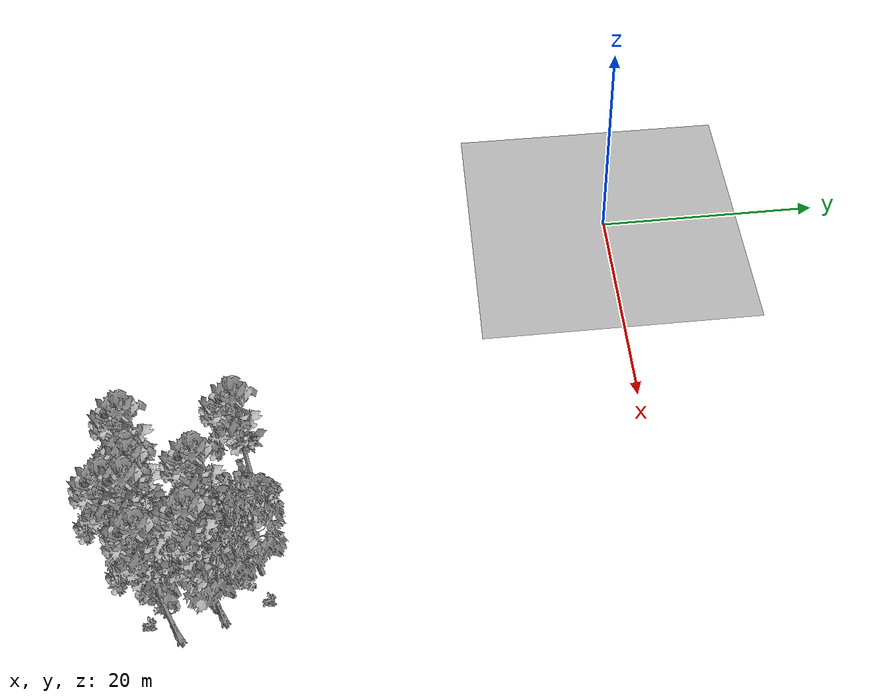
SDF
<sdf version="1.7">
 <world name="default">
  <model name="ground_plane">
   <static>1</static>
   <link name="link">
    <collision name="collision">
     <pose>-50 0 0 0 -0 0</pose>
     <geometry><plane><normal>0 0 1</normal><size>80 80</size></plane></geometry>
     <surface><contact><ode><min_depth>0.01</min_depth><max_vel>0</max_vel></ode></contact></surface>
    </collision>
    <visual name="grass">
     <cast_shadows>0</cast_shadows>
     <geometry>
      <mesh>
       <scale>0.46714285714285714 0.46714285714285714 0.1</scale>
       <uri>file://grass_plane/meshes/grass_plane.dae</uri>
      </mesh>
     </geometry>
    </visual>
   </link>
  </model>
  <model name="Tree 8">
   <static>1</static>
   <pose>34.49295552566552 -38.38899228813294 0 1.57079 -0 0</pose>
   <link name="link">
    <collision name="collision">
     <geometry><mesh><scale>3.5 5 3.5</scale><uri>model://tree_9/meshes/tree_9.obj</uri></mesh></geometry>
    </collision>
    <visual name="visual">
     <geometry><mesh><scale>3.5 5 3.5</scale><uri>model://tree_9/meshes/tree_9.obj</uri></mesh></geometry>
    </visual>
   </link>
  </model>
  <model name="Tree 20">
   <static>1</static>
   <pose>33.00172199247376 -33.87744943451156 0 1.57079 -0 0</pose>
   <link name="link">
    <collision name="collision">
     <geometry><mesh><scale>3.5 5 3.5</scale><uri>model://tree_9/meshes/tree_9.obj</uri></mesh></geometry>
    </collision>
    <visual name="visual">
     <geometry><mesh><scale>3.5 5 3.5</scale><uri>model://tree_9/meshes/tree_9.obj</uri></mesh></geometry>
    </visual>
   </link>
  </model>
  <model name="Tree 48">
   <static>1</static>
   <pose>32.96853286918038 -38.11937939612697 0 1.57079 -0 0</pose>
   <link name="link">
    <collision name="collision">
     <geometry><mesh><scale>3.5 5 3.5</scale><uri>model://tree_9/meshes/tree_9.obj</uri></mesh></geometry>
    </collision>
    <visual name="visual">
     <geometry><mesh><scale>3.5 5 3.5</scale><uri>model://tree_9/meshes/tree_9.obj</uri></mesh></geometry>
    </visual>
   </link>
  </model>
  <model name="Tree 96">
   <static>1</static>
   <pose>28.973933767972696 -39.09815846501508 0 1.57079 -0 0</pose>
   <link name="link">
    <collision name="collision">
     <geometry><mesh><scale>3.5 5 3.5</scale><uri>model://tree_9/meshes/tree_9.obj</uri></mesh></geometry>
    </collision>
    <visual name="visual">
     <geometry><mesh><scale>3.5 5 3.5</scale><uri>model://tree_9/meshes/tree_9.obj</uri></mesh></geometry>
    </visual>
   </link>
  </model>
  <model name="Tree 139">
   <static>1</static>
   <pose>36.47490648990211 -34.739538654504784 0 1.57079 -0 0</pose>
   <link name="link">
    <collision name="collision">
     <geometry><mesh><scale>3.5 5 3.5</scale><uri>model://tree_2/meshes/tree_2.obj</uri></mesh></geometry>
    </collision>
    <visual name="visual">
     <geometry><mesh><scale>3.5 5 3.5</scale><uri>model://tree_2/meshes/tree_2.obj</uri></mesh></geometry>
    </visual>
   </link>
  </model>
  <model name="Tree 225">
   <static>1</static>
   <pose>33.61349323770182 -31.404459941034972 0 1.57079 -0 0</pose>
   <link name="link">
    <collision name="collision">
     <geometry><mesh><scale>3.5 5 3.5</scale><uri>model://tree_2/meshes/tree_2.obj</uri></mesh></geometry>
    </collision>
    <visual name="visual">
     <geometry><mesh><scale>3.5 5 3.5</scale><uri>model://tree_2/meshes/tree_2.obj</uri></mesh></geometry>
    </visual>
   </link>
  </model>
  <model name="Tree 314">
   <static>1</static>
   <pose>34.77116886239604 -37.68761335708597 0 1.57079 -0 0</pose>
   <link name="link">
    <collision name="collision">
     <geometry><mesh><scale>3.5 5 3.5</scale><uri>model://tree_2/meshes/tree_2.obj</uri></mesh></geometry>
    </collision>
    <visual name="visual">
     <geometry><mesh><scale>3.5 5 3.5</scale><uri>model://tree_2/meshes/tree_2.obj</uri></mesh></geometry>
    </visual>
   </link>
  </model>
  <model name="Tree 320">
   <static>1</static>
   <pose>28.58090664128372 -31.381829050268806 0 1.57079 -0 0</pose>
   <link name="link">
    <collision name="collision">
     <geometry><mesh><scale>3.5 5 3.5</scale><uri>model://tree_9/meshes/tree_9.obj</uri></mesh></geometry>
    </collision>
    <visual name="visual">
     <geometry><mesh><scale>3.5 5 3.5</scale><uri>model://tree_9/meshes/tree_9.obj</uri></mesh></geometry>
    </visual>
   </link>
  </model>
  <model name="Tree 437">
   <static>1</static>
   <pose>35.298857888451494 -33.524072252771695 0 1.57079 -0 0</pose>
   <link name="link">
    <collision name="collision">
     <geometry><mesh><scale>3.5 5 3.5</scale><uri>model://tree_2/meshes/tree_2.obj</uri></mesh></geometry>
    </collision>
    <visual name="visual">
     <geometry><mesh><scale>3.5 5 3.5</scale><uri>model://tree_2/meshes/tree_2.obj</uri></mesh></geometry>
    </visual>
   </link>
  </model>
  <model name="Tree 458">
   <static>1</static>
   <pose>37.32949129968921 -34.123247341942516 0 1.57079 -0 0</pose>
   <link name="link">
    <collision name="collision">
     <geometry><mesh><scale>3.5 5 3.5</scale><uri>model://tree_9/meshes/tree_9.obj</uri></mesh></geometry>
    </collision>
    <visual name="visual">
     <geometry><mesh><scale>3.5 5 3.5</scale><uri>model://tree_9/meshes/tree_9.obj</uri></mesh></geometry>
    </visual>
   </link>
  </model>
  <model name="Tree 506">
   <static>1</static>
   <pose>34.42800935228185 -39.86549120639599 0 1.57079 -0 0</pose>
   <link name="link">
    <collision name="collision">
     <geometry><mesh><scale>3.5 5 3.5</scale><uri>model://tree_9/meshes/tree_9.obj</uri></mesh></geometry>
    </collision>
    <visual name="visual">
     <geometry><mesh><scale>3.5 5 3.5</scale><uri>model://tree_9/meshes/tree_9.obj</uri></mesh></geometry>
    </visual>
   </link>
  </model>
  <model name="Tree 521">
   <static>1</static>
   <pose>32.40594636904041 -38.41516595754571 0 1.57079 -0 0</pose>
   <link name="link">
    <collision name="collision">
     <geometry><mesh><scale>3.5 5 3.5</scale><uri>model://tree_9/meshes/tree_9.obj</uri></mesh></geometry>
    </collision>
    <visual name="visual">
     <geometry><mesh><scale>3.5 5 3.5</scale><uri>model://tree_9/meshes/tree_9.obj</uri></mesh></geometry>
    </visual>
   </link>
  </model>
  <model name="Tree 531">
   <static>1</static>
   <pose>38.4801857771772 -37.32998000514975 0 1.57079 -0 0</pose>
   <link name="link">
    <collision name="collision">
     <geometry><mesh><scale>3.5 5 3.5</scale><uri>model://tree_9/meshes/tree_9.obj</uri></mesh></geometry>
    </collision>
    <visual name="visual">
     <geometry><mesh><scale>3.5 5 3.5</scale><uri>model://tree_9/meshes/tree_9.obj</uri></mesh></geometry>
    </visual>
   </link>
  </model>
  <model name="Bush 65">
   <static>1</static>
   <pose>36.642635987237625 -38.26615430739931 0 1.57079 -0 0</pose>
   <link name="link">
    <collision name="collision">
     <geometry><mesh><scale>2 2 2</scale><uri>model://bush_5/meshes/bush_5.obj</uri></mesh></geometry>
     <surface><contact><collide_without_contact>false</collide_without_contact></contact></surface>
    </collision>
    <visual name="visual">
     <geometry><mesh><scale>2 2 2</scale><uri>model://bush_5/meshes/bush_5.obj</uri></mesh></geometry>
    </visual>
   </link>
  </model>
  <model name="Bush 123">
   <static>1</static>
   <pose>34.61146317476879 -32.532228582957785 0 1.57079 -0 0</pose>
   <link name="link">
    <collision name="collision">
     <geometry><mesh><scale>2 2 2</scale><uri>model://bush_1/meshes/bush_1.obj</uri></mesh></geometry>
     <surface><contact><collide_without_contact>false</collide_without_contact></contact></surface>
    </collision>
    <visual name="visual">
     <geometry><mesh><scale>2 2 2</scale><uri>model://bush_1/meshes/bush_1.obj</uri></mesh></geometry>
    </visual>
   </link>
  </model>
  <model name="Bush 170">
   <static>1</static>
   <pose>37.1035414313844 -39.63653458456409 0 1.57079 -0 0</pose>
   <link name="link">
    <collision name="collision">
     <geometry><mesh><scale>2 2 2</scale><uri>model://bush_2/meshes/bush_2.obj</uri></mesh></geometry>
     <surface><contact><collide_without_contact>false</collide_without_contact></contact></surface>
    </collision>
    <visual name="visual">
     <geometry><mesh><scale>2 2 2</scale><uri>model://bush_2/meshes/bush_2.obj</uri></mesh></geometry>
    </visual>
   </link>
  </model>
  <model name="Bush 189">
   <static>1</static>
   <pose>35.08591141585788 -39.87053545159485 0 1.57079 -0 0</pose>
   <link name="link">
    <collision name="collision">
     <geometry><mesh><scale>2 2 2</scale><uri>model://bush_1/meshes/bush_1.obj</uri></mesh></geometry>
     <surface><contact><collide_without_contact>false</collide_without_contact></contact></surface>
    </collision>
    <visual name="visual">
     <geometry><mesh><scale>2 2 2</scale><uri>model://bush_1/meshes/bush_1.obj</uri></mesh></geometry>
    </visual>
   </link>
  </model>
  <model name="Bush 208">
   <static>1</static>
   <pose>36.04936945114994 -30.77665827054945 0 1.57079 -0 0</pose>
   <link name="link">
    <collision name="collision">
     <geometry><mesh><scale>2 2 2</scale><uri>model://bush_2/meshes/bush_2.obj</uri></mesh></geometry>
     <surface><contact><collide_without_contact>false</collide_without_contact></contact></surface>
    </collision>
    <visual name="visual">
     <geometry><mesh><scale>2 2 2</scale><uri>model://bush_2/meshes/bush_2.obj</uri></mesh></geometry>
    </visual>
   </link>
  </model>
  <model name="Bush 377">
   <static>1</static>
   <pose>28.997550518786568 -32.45946318142968 0 1.57079 -0 0</pose>
   <link name="link">
    <collision name="collision">
     <geometry><mesh><scale>2 2 2</scale><uri>model://bush_2/meshes/bush_2.obj</uri></mesh></geometry>
     <surface><contact><collide_without_contact>false</collide_without_contact></contact></surface>
    </collision>
    <visual name="visual">
     <geometry><mesh><scale>2 2 2</scale><uri>model://bush_2/meshes/bush_2.obj</uri></mesh></geometry>
    </visual>
   </link>
  </model>
  <model name="Bush 479">
   <static>1</static>
   <pose>29.123453865924446 -33.55621430245985 0 1.57079 -0 0</pose>
   <link name="link">
    <collision name="collision">
     <geometry><mesh><scale>2 2 2</scale><uri>model://bush_2/meshes/bush_2.obj</uri></mesh></geometry>
     <surface><contact><collide_without_contact>false</collide_without_contact></contact></surface>
    </collision>
    <visual name="visual">
     <geometry><mesh><scale>2 2 2</scale><uri>model://bush_2/meshes/bush_2.obj</uri></mesh></geometry>
    </visual>
   </link>
  </model>
  <model name="Bush 530">
   <static>1</static>
   <pose>32.82923296063933 -33.58858034219189 0 1.57079 -0 0</pose>
   <link name="link">
    <collision name="collision">
     <geometry><mesh><scale>2 2 2</scale><uri>model://bush_2/meshes/bush_2.obj</uri></mesh></geometry>
     <surface><contact><collide_without_contact>false</collide_without_contact></contact></surface>
    </collision>
    <visual name="visual">
     <geometry><mesh><scale>2 2 2</scale><uri>model://bush_2/meshes/bush_2.obj</uri></mesh></geometry>
    </visual>
   </link>
  </model>
  <model name="Bush 547">
   <static>1</static>
   <pose>32.08608865387846 -38.045178480049174 0 1.57079 -0 0</pose>
   <link name="link">
    <collision name="collision">
     <geometry><mesh><scale>2 2 2</scale><uri>model://bush_2/meshes/bush_2.obj</uri></mesh></geometry>
     <surface><contact><collide_without_contact>false</collide_without_contact></contact></surface>
    </collision>
    <visual name="visual">
     <geometry><mesh><scale>2 2 2</scale><uri>model://bush_2/meshes/bush_2.obj</uri></mesh></geometry>
    </visual>
   </link>
  </model>
  <model name="Bush 569">
   <static>1</static>
   <pose>28.63446016037848 -36.301694638486175 0 1.57079 -0 0</pose>
   <link name="link">
    <collision name="collision">
     <geometry><mesh><scale>2 2 2</scale><uri>model://bush_2/meshes/bush_2.obj</uri></mesh></geometry>
     <surface><contact><collide_without_contact>false</collide_without_contact></contact></surface>
    </collision>
    <visual name="visual">
     <geometry><mesh><scale>2 2 2</scale><uri>model://bush_2/meshes/bush_2.obj</uri></mesh></geometry>
    </visual>
   </link>
  </model>
 </world>
</sdf>
